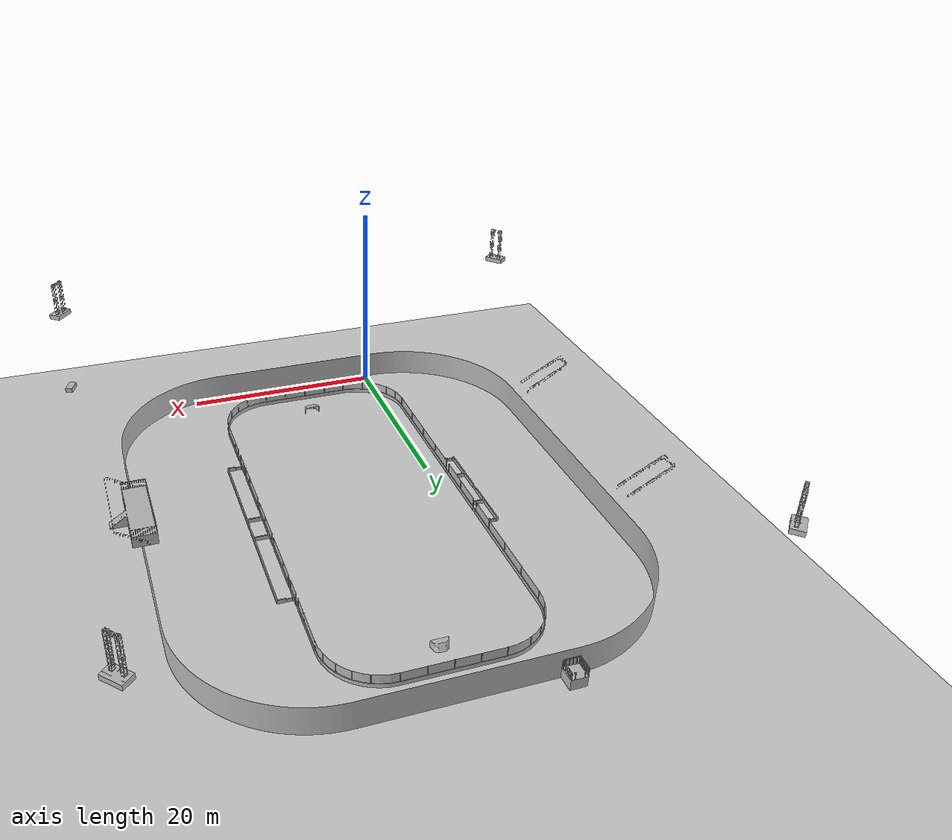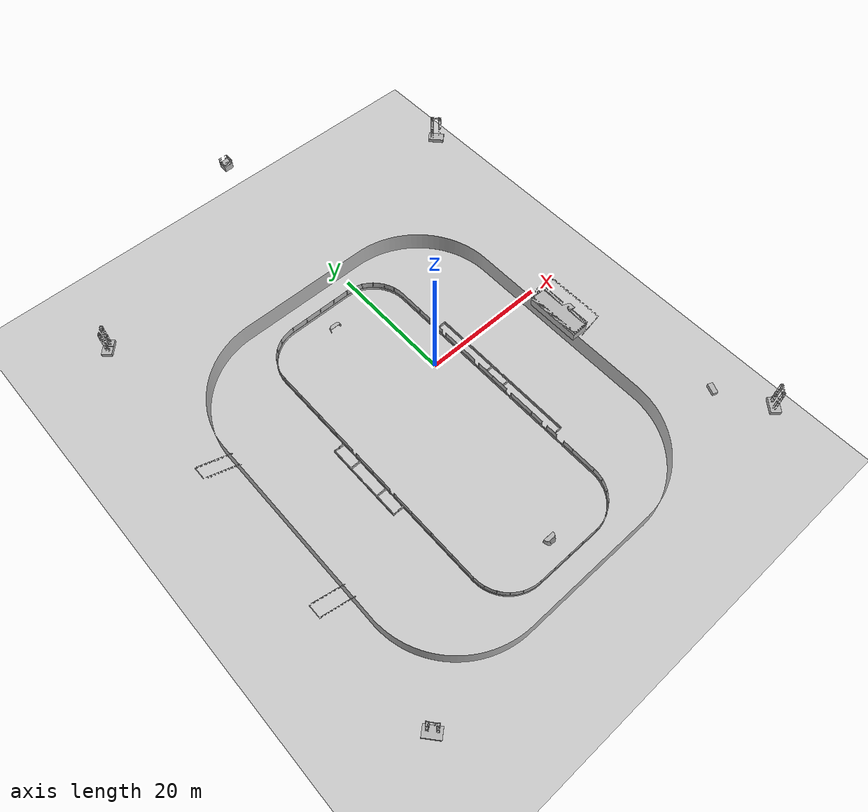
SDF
<sdf version="1.6">
 <world name="wks">
  <include><uri>model://ground_plane</uri><pose>0 0 -19 0 0 0</pose></include>
  <model name="Props_Props_0_AS1_0">
   <static>1</static>
   <link name="Props_Props_0_AS1_0">
    <pose>1.131485 0.2336953 -19.56981 0 4.712389 0</pose>
    <visual name="Props_Props_0_AS1_0">
     <geometry><mesh><uri>worlds/WKS-Gazebo/Props_Props_0_AS1_0.stl</uri><scale>1 1 1</scale></mesh></geometry>
     <meta><layer>0</layer></meta>
    </visual>
    <collision name="Props_Props_0_AS1_0">
     <geometry><mesh><uri>worlds/WKS-Gazebo/Props_Props_0_AS1_0.stl</uri><scale>1 1 1</scale></mesh></geometry>
    </collision>
   </link>
  </model>
  <model name="Props_Props_0_ASAS1_0">
   <static>1</static>
   <link name="Props_Props_0_ASAS1_0">
    <pose>1.131485 0.2336953 -19.56981 0 4.712389 0</pose>
    <visual name="Props_Props_0_ASAS1_0">
     <geometry><mesh><uri>worlds/WKS-Gazebo/Props_Props_0_ASAS1_0.stl</uri><scale>1 1 1</scale></mesh></geometry>
     <meta><layer>0</layer></meta>
    </visual>
    <collision name="Props_Props_0_ASAS1_0">
     <geometry><mesh><uri>worlds/WKS-Gazebo/Props_Props_0_ASAS1_0.stl</uri><scale>1 1 1</scale></mesh></geometry>
    </collision>
   </link>
  </model>
  <model name="Props_Props_0_Bqcd_01_0">
   <static>1</static>
   <link name="Props_Props_0_Bqcd_01_0">
    <pose>1.131485 0.2336953 -19.56981 0 4.712389 0</pose>
    <visual name="Props_Props_0_Bqcd_01_0">
     <geometry><mesh><uri>worlds/WKS-Gazebo/Props_Props_0_Bqcd_01_0.stl</uri><scale>1 1 1</scale></mesh></geometry>
     <meta><layer>0</layer></meta>
    </visual>
    <collision name="Props_Props_0_Bqcd_01_0">
     <geometry><mesh><uri>worlds/WKS-Gazebo/Props_Props_0_Bqcd_01_0.stl</uri><scale>1 1 1</scale></mesh></geometry>
    </collision>
   </link>
  </model>
  <model name="Props_Props_0_Bqcd_02_0">
   <static>1</static>
   <link name="Props_Props_0_Bqcd_02_0">
    <pose>1.131485 0.2336953 -19.56981 0 4.712389 0</pose>
    <visual name="Props_Props_0_Bqcd_02_0">
     <geometry><mesh><uri>worlds/WKS-Gazebo/Props_Props_0_Bqcd_02_0.stl</uri><scale>1 1 1</scale></mesh></geometry>
     <meta><layer>0</layer></meta>
    </visual>
    <collision name="Props_Props_0_Bqcd_02_0">
     <geometry><mesh><uri>worlds/WKS-Gazebo/Props_Props_0_Bqcd_02_0.stl</uri><scale>1 1 1</scale></mesh></geometry>
    </collision>
   </link>
  </model>
  <model name="Props_Props_0_Bqcd_03_0">
   <static>1</static>
   <link name="Props_Props_0_Bqcd_03_0">
    <pose>1.131485 0.2336953 -19.56981 0 4.712389 0</pose>
    <visual name="Props_Props_0_Bqcd_03_0">
     <geometry><mesh><uri>worlds/WKS-Gazebo/Props_Props_0_Bqcd_03_0.stl</uri><scale>1 1 1</scale></mesh></geometry>
     <meta><layer>0</layer></meta>
    </visual>
    <collision name="Props_Props_0_Bqcd_03_0">
     <geometry><mesh><uri>worlds/WKS-Gazebo/Props_Props_0_Bqcd_03_0.stl</uri><scale>1 1 1</scale></mesh></geometry>
    </collision>
   </link>
  </model>
  <model name="Props_Props_0_Bqcd_04_0">
   <static>1</static>
   <link name="Props_Props_0_Bqcd_04_0">
    <pose>1.131485 0.2336953 -19.56981 0 4.712389 0</pose>
    <visual name="Props_Props_0_Bqcd_04_0">
     <geometry><mesh><uri>worlds/WKS-Gazebo/Props_Props_0_Bqcd_04_0.stl</uri><scale>1 1 1</scale></mesh></geometry>
     <meta><layer>0</layer></meta>
    </visual>
    <collision name="Props_Props_0_Bqcd_04_0">
     <geometry><mesh><uri>worlds/WKS-Gazebo/Props_Props_0_Bqcd_04_0.stl</uri><scale>1 1 1</scale></mesh></geometry>
    </collision>
   </link>
  </model>
  <model name="Props_Props_0_Bqcd_05_0">
   <static>1</static>
   <link name="Props_Props_0_Bqcd_05_0">
    <pose>1.131485 0.2336953 -19.56981 0 4.712389 0</pose>
    <visual name="Props_Props_0_Bqcd_05_0">
     <geometry><mesh><uri>worlds/WKS-Gazebo/Props_Props_0_Bqcd_05_0.stl</uri><scale>1 1 1</scale></mesh></geometry>
     <meta><layer>0</layer></meta>
    </visual>
    <collision name="Props_Props_0_Bqcd_05_0">
     <geometry><mesh><uri>worlds/WKS-Gazebo/Props_Props_0_Bqcd_05_0.stl</uri><scale>1 1 1</scale></mesh></geometry>
    </collision>
   </link>
  </model>
  <model name="Props_Props_0_Bqcd_06_0">
   <static>1</static>
   <link name="Props_Props_0_Bqcd_06_0">
    <pose>1.131485 0.2336953 -19.56981 0 4.712389 0</pose>
    <visual name="Props_Props_0_Bqcd_06_0">
     <geometry><mesh><uri>worlds/WKS-Gazebo/Props_Props_0_Bqcd_06_0.stl</uri><scale>1 1 1</scale></mesh></geometry>
     <meta><layer>0</layer></meta>
    </visual>
    <collision name="Props_Props_0_Bqcd_06_0">
     <geometry><mesh><uri>worlds/WKS-Gazebo/Props_Props_0_Bqcd_06_0.stl</uri><scale>1 1 1</scale></mesh></geometry>
    </collision>
   </link>
  </model>
  <model name="Props_Props_0_Bqcd_07_0">
   <static>1</static>
   <link name="Props_Props_0_Bqcd_07_0">
    <pose>1.131485 0.2336953 -19.56981 0 4.712389 0</pose>
    <visual name="Props_Props_0_Bqcd_07_0">
     <geometry><mesh><uri>worlds/WKS-Gazebo/Props_Props_0_Bqcd_07_0.stl</uri><scale>1 1 1</scale></mesh></geometry>
     <meta><layer>0</layer></meta>
    </visual>
    <collision name="Props_Props_0_Bqcd_07_0">
     <geometry><mesh><uri>worlds/WKS-Gazebo/Props_Props_0_Bqcd_07_0.stl</uri><scale>1 1 1</scale></mesh></geometry>
    </collision>
   </link>
  </model>
  <model name="Props_Props_0_Bqcd_08_0">
   <static>1</static>
   <link name="Props_Props_0_Bqcd_08_0">
    <pose>1.131485 0.2336953 -19.56981 0 4.712389 0</pose>
    <visual name="Props_Props_0_Bqcd_08_0">
     <geometry><mesh><uri>worlds/WKS-Gazebo/Props_Props_0_Bqcd_08_0.stl</uri><scale>1 1 1</scale></mesh></geometry>
     <meta><layer>0</layer></meta>
    </visual>
    <collision name="Props_Props_0_Bqcd_08_0">
     <geometry><mesh><uri>worlds/WKS-Gazebo/Props_Props_0_Bqcd_08_0.stl</uri><scale>1 1 1</scale></mesh></geometry>
    </collision>
   </link>
  </model>
  <model name="Props_Props_0_Bqcd_09_0">
   <static>1</static>
   <link name="Props_Props_0_Bqcd_09_0">
    <pose>1.131485 0.2336953 -19.56981 0 4.712389 0</pose>
    <visual name="Props_Props_0_Bqcd_09_0">
     <geometry><mesh><uri>worlds/WKS-Gazebo/Props_Props_0_Bqcd_09_0.stl</uri><scale>1 1 1</scale></mesh></geometry>
     <meta><layer>0</layer></meta>
    </visual>
    <collision name="Props_Props_0_Bqcd_09_0">
     <geometry><mesh><uri>worlds/WKS-Gazebo/Props_Props_0_Bqcd_09_0.stl</uri><scale>1 1 1</scale></mesh></geometry>
    </collision>
   </link>
  </model>
  <model name="Props_Props_0_Bqcd_10_0">
   <static>1</static>
   <link name="Props_Props_0_Bqcd_10_0">
    <pose>1.131485 0.2336953 -19.56981 0 4.712389 0</pose>
    <visual name="Props_Props_0_Bqcd_10_0">
     <geometry><mesh><uri>worlds/WKS-Gazebo/Props_Props_0_Bqcd_10_0.stl</uri><scale>1 1 1</scale></mesh></geometry>
     <meta><layer>0</layer></meta>
    </visual>
    <collision name="Props_Props_0_Bqcd_10_0">
     <geometry><mesh><uri>worlds/WKS-Gazebo/Props_Props_0_Bqcd_10_0.stl</uri><scale>1 1 1</scale></mesh></geometry>
    </collision>
   </link>
  </model>
  <model name="Props_Props_0_Bqcd_11_0">
   <static>1</static>
   <link name="Props_Props_0_Bqcd_11_0">
    <pose>1.131485 0.2336953 -19.56981 0 4.712389 0</pose>
    <visual name="Props_Props_0_Bqcd_11_0">
     <geometry><mesh><uri>worlds/WKS-Gazebo/Props_Props_0_Bqcd_11_0.stl</uri><scale>1 1 1</scale></mesh></geometry>
     <meta><layer>0</layer></meta>
    </visual>
    <collision name="Props_Props_0_Bqcd_11_0">
     <geometry><mesh><uri>worlds/WKS-Gazebo/Props_Props_0_Bqcd_11_0.stl</uri><scale>1 1 1</scale></mesh></geometry>
    </collision>
   </link>
  </model>
  <model name="Props_Props_0_Bqcd_12_0">
   <static>1</static>
   <link name="Props_Props_0_Bqcd_12_0">
    <pose>1.131485 0.2336953 -19.56981 0 4.712389 0</pose>
    <visual name="Props_Props_0_Bqcd_12_0">
     <geometry><mesh><uri>worlds/WKS-Gazebo/Props_Props_0_Bqcd_12_0.stl</uri><scale>1 1 1</scale></mesh></geometry>
     <meta><layer>0</layer></meta>
    </visual>
    <collision name="Props_Props_0_Bqcd_12_0">
     <geometry><mesh><uri>worlds/WKS-Gazebo/Props_Props_0_Bqcd_12_0.stl</uri><scale>1 1 1</scale></mesh></geometry>
    </collision>
   </link>
  </model>
  <model name="Props_Props_0_Bqcd_13_0">
   <static>1</static>
   <link name="Props_Props_0_Bqcd_13_0">
    <pose>1.131485 0.2336953 -19.56981 0 4.712389 0</pose>
    <visual name="Props_Props_0_Bqcd_13_0">
     <geometry><mesh><uri>worlds/WKS-Gazebo/Props_Props_0_Bqcd_13_0.stl</uri><scale>1 1 1</scale></mesh></geometry>
     <meta><layer>0</layer></meta>
    </visual>
    <collision name="Props_Props_0_Bqcd_13_0">
     <geometry><mesh><uri>worlds/WKS-Gazebo/Props_Props_0_Bqcd_13_0.stl</uri><scale>1 1 1</scale></mesh></geometry>
    </collision>
   </link>
  </model>
  <model name="Props_Props_0_Cam_taizi_01_0">
   <static>1</static>
   <link name="Props_Props_0_Cam_taizi_01_0">
    <pose>1.131485 0.2336953 -19.56981 0 4.712389 0</pose>
    <visual name="Props_Props_0_Cam_taizi_01_0">
     <geometry>
      <mesh><uri>worlds/WKS-Gazebo/Props_Props_0_Cam_taizi_01_0.stl</uri><scale>1 1 1</scale></mesh>
     </geometry>
     <meta><layer>0</layer></meta>
    </visual>
    <collision name="Props_Props_0_Cam_taizi_01_0">
     <geometry>
      <mesh><uri>worlds/WKS-Gazebo/Props_Props_0_Cam_taizi_01_0.stl</uri><scale>1 1 1</scale></mesh>
     </geometry>
    </collision>
   </link>
  </model>
  <model name="Props_Props_0_Cam_taizi_02_0">
   <static>1</static>
   <link name="Props_Props_0_Cam_taizi_02_0">
    <pose>1.131485 0.2336953 -19.56981 0 4.712389 0</pose>
    <visual name="Props_Props_0_Cam_taizi_02_0">
     <geometry>
      <mesh><uri>worlds/WKS-Gazebo/Props_Props_0_Cam_taizi_02_0.stl</uri><scale>1 1 1</scale></mesh>
     </geometry>
     <meta><layer>0</layer></meta>
    </visual>
    <collision name="Props_Props_0_Cam_taizi_02_0">
     <geometry>
      <mesh><uri>worlds/WKS-Gazebo/Props_Props_0_Cam_taizi_02_0.stl</uri><scale>1 1 1</scale></mesh>
     </geometry>
    </collision>
   </link>
  </model>
  <model name="Props_Props_0_Cam_taizi_03_0">
   <static>1</static>
   <link name="Props_Props_0_Cam_taizi_03_0">
    <pose>1.131485 0.2336953 -19.56981 0 4.712389 0</pose>
    <visual name="Props_Props_0_Cam_taizi_03_0">
     <geometry>
      <mesh><uri>worlds/WKS-Gazebo/Props_Props_0_Cam_taizi_03_0.stl</uri><scale>1 1 1</scale></mesh>
     </geometry>
     <meta><layer>0</layer></meta>
    </visual>
    <collision name="Props_Props_0_Cam_taizi_03_0">
     <geometry>
      <mesh><uri>worlds/WKS-Gazebo/Props_Props_0_Cam_taizi_03_0.stl</uri><scale>1 1 1</scale></mesh>
     </geometry>
    </collision>
   </link>
  </model>
  <model name="Props_Props_0_Cam_taizi_04_0">
   <static>1</static>
   <link name="Props_Props_0_Cam_taizi_04_0">
    <pose>1.131485 0.2336953 -19.56981 0 4.712389 0</pose>
    <visual name="Props_Props_0_Cam_taizi_04_0">
     <geometry>
      <mesh><uri>worlds/WKS-Gazebo/Props_Props_0_Cam_taizi_04_0.stl</uri><scale>1 1 1</scale></mesh>
     </geometry>
     <meta><layer>0</layer></meta>
    </visual>
    <collision name="Props_Props_0_Cam_taizi_04_0">
     <geometry>
      <mesh><uri>worlds/WKS-Gazebo/Props_Props_0_Cam_taizi_04_0.stl</uri><scale>1 1 1</scale></mesh>
     </geometry>
    </collision>
   </link>
  </model>
  <model name="Props_Props_0_Cam_taizi_05_0">
   <static>1</static>
   <link name="Props_Props_0_Cam_taizi_05_0">
    <pose>1.131485 0.2336953 -19.56981 0 4.712389 0</pose>
    <visual name="Props_Props_0_Cam_taizi_05_0">
     <geometry>
      <mesh><uri>worlds/WKS-Gazebo/Props_Props_0_Cam_taizi_05_0.stl</uri><scale>1 1 1</scale></mesh>
     </geometry>
     <meta><layer>0</layer></meta>
    </visual>
    <collision name="Props_Props_0_Cam_taizi_05_0">
     <geometry>
      <mesh><uri>worlds/WKS-Gazebo/Props_Props_0_Cam_taizi_05_0.stl</uri><scale>1 1 1</scale></mesh>
     </geometry>
    </collision>
   </link>
  </model>
  <model name="Props_Props_0_Cam_taizi_08_0">
   <static>1</static>
   <link name="Props_Props_0_Cam_taizi_08_0">
    <pose>1.131485 0.2336953 -19.56981 0 4.712389 0</pose>
    <visual name="Props_Props_0_Cam_taizi_08_0">
     <geometry>
      <mesh><uri>worlds/WKS-Gazebo/Props_Props_0_Cam_taizi_08_0.stl</uri><scale>1 1 1</scale></mesh>
     </geometry>
     <meta><layer>0</layer></meta>
    </visual>
    <collision name="Props_Props_0_Cam_taizi_08_0">
     <geometry>
      <mesh><uri>worlds/WKS-Gazebo/Props_Props_0_Cam_taizi_08_0.stl</uri><scale>1 1 1</scale></mesh>
     </geometry>
    </collision>
   </link>
  </model>
  <model name="Props_Props_0_Cam_taizi_10_0">
   <static>1</static>
   <link name="Props_Props_0_Cam_taizi_10_0">
    <pose>1.131485 0.2336953 -19.56981 0 4.712389 0</pose>
    <visual name="Props_Props_0_Cam_taizi_10_0">
     <geometry>
      <mesh><uri>worlds/WKS-Gazebo/Props_Props_0_Cam_taizi_10_0.stl</uri><scale>1 1 1</scale></mesh>
     </geometry>
     <meta><layer>0</layer></meta>
    </visual>
    <collision name="Props_Props_0_Cam_taizi_10_0">
     <geometry>
      <mesh><uri>worlds/WKS-Gazebo/Props_Props_0_Cam_taizi_10_0.stl</uri><scale>1 1 1</scale></mesh>
     </geometry>
    </collision>
   </link>
  </model>
 </world>
</sdf>
